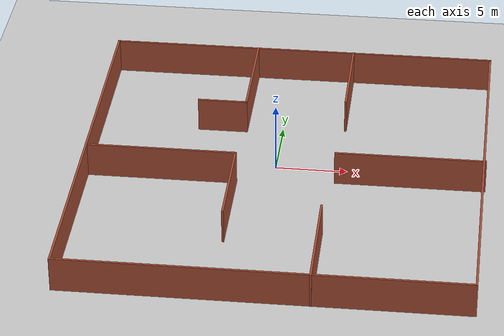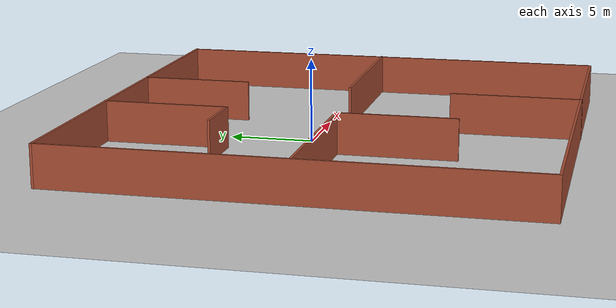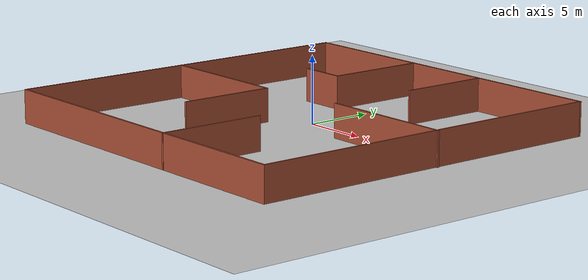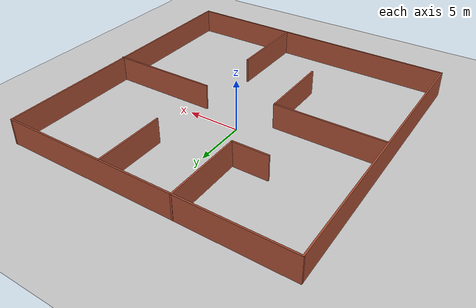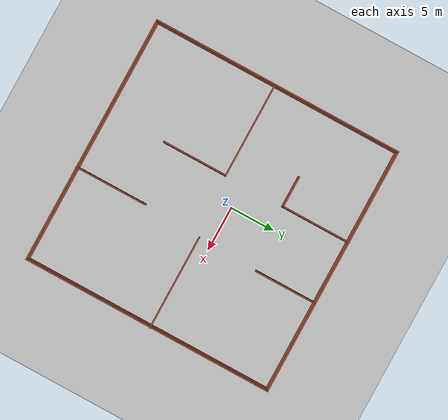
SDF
<sdf version="1.6">
 <world name="default">
  <light name="sun" type="directional">
   <pose>0 0 10 0 -0 0</pose>
   <diffuse>0.8 0.8 0.8 1</diffuse>
   <specular>0.1 0.1 0.1 1</specular>
   <attenuation>
    <range>1000</range>
    <constant>0.9</constant>
    <linear>0.01</linear>
    <quadratic>0.001</quadratic>
   </attenuation>
   <direction>-0.5 0.5 -1</direction>
  </light>
  <model name="ground_plane">
   <static>1</static>
   <link name="link">
    <collision name="collision">
     <geometry><plane><normal>0 0 1</normal><size>100 100</size></plane></geometry>
     <surface><friction><ode><mu>100</mu><mu2>50</mu2></ode></friction></surface>
    </collision>
    <visual name="visual">
     <cast_shadows>0</cast_shadows>
     <geometry><plane><normal>0 0 1</normal><size>100 100</size></plane></geometry>
     <material>
      <script><uri>file://media/materials/scripts/gazebo.material</uri><name>Gazebo/Grey</name></script>
     </material>
    </visual>
   </link>
  </model>
  <gravity>0 0 -9.8</gravity>
  <magnetic_field>6e-06 2.3e-05 -4.2e-05</magnetic_field>
  <atmosphere type="adiabatic"/>
  <physics name="default_physics" default="0" type="ode">
   <max_step_size>0.001</max_step_size>
   <real_time_factor>1</real_time_factor>
   <real_time_update_rate>1000</real_time_update_rate>
  </physics>
  <scene><ambient>0.4 0.4 0.4 1</ambient><background>0.7 0.7 0.7 1</background><shadows>1</shadows></scene>
  <spherical_coordinates>
   <surface_model>EARTH_WGS84</surface_model>
   <latitude_deg>0</latitude_deg>
   <longitude_deg>0</longitude_deg>
   <elevation>0</elevation>
   <heading_deg>0</heading_deg>
  </spherical_coordinates>
  <model name="room_rf_easy">
   <link name="Wall_0">
    <pose>-13.8516 0.036134 0 0 0 -1.5708</pose>
    <visual name="Wall_0_Visual">
     <pose>0 0 1.25 0 -0 0</pose>
     <geometry><box><size>28 0.15 2.5</size></box></geometry>
     <material>
      <script><uri>file://media/materials/scripts/gazebo.material</uri><name>Gazebo/Bricks</name></script>
      <ambient>1 1 1 1</ambient>
      <diffuse>1 1 1 1</diffuse>
      <specular>0.2 0.2 0.2 1</specular>
      <emissive>0 0 0 1</emissive>
     </material>
    </visual>
    <collision name="Wall_0_Collision">
     <pose>0 0 1.25 0 -0 0</pose>
     <geometry><box><size>28 0.15 2.5</size></box></geometry>
     <surface>
      <friction>
       <ode><mu>1</mu><mu2>1</mu2><fdir1>0 0 0</fdir1><slip1>0</slip1><slip2>0</slip2></ode>
       <torsional>
        <coefficient>1</coefficient>
        <patch_radius>0</patch_radius>
        <surface_radius>0</surface_radius>
        <use_patch_radius>1</use_patch_radius>
        <ode><slip>0</slip></ode>
       </torsional>
      </friction>
      <bounce><restitution_coefficient>0</restitution_coefficient><threshold>1e+06</threshold></bounce>
      <contact>
       <collide_without_contact>0</collide_without_contact>
       <collide_without_contact_bitmask>1</collide_without_contact_bitmask>
       <collide_bitmask>1</collide_bitmask>
       <ode>
        <soft_cfm>0</soft_cfm>
        <soft_erp>0.2</soft_erp>
        <kp>1e+13</kp>
        <kd>1</kd>
        <max_vel>0.01</max_vel>
        <min_depth>0</min_depth>
       </ode>
       <bullet>
        <split_impulse>1</split_impulse>
        <split_impulse_penetration_threshold>-0.01</split_impulse_penetration_threshold>
        <soft_cfm>0</soft_cfm>
        <soft_erp>0.2</soft_erp>
        <kp>1e+13</kp>
        <kd>1</kd>
       </bullet>
      </contact>
     </surface>
    </collision>
   </link>
   <link name="Wall_12">
    <pose>-8.57063 -0.247509 0 0 -0 0</pose>
    <visual name="Wall_12_Visual">
     <pose>0 0 1.25 0 -0 0</pose>
     <geometry><box><size>10.5 0.15 2.5</size></box></geometry>
     <material>
      <script><uri>file://media/materials/scripts/gazebo.material</uri><name>Gazebo/Bricks</name></script>
      <ambient>1 1 1 1</ambient>
      <diffuse>1 1 1 1</diffuse>
      <specular>0.2 0.2 0.2 1</specular>
      <emissive>0 0 0 1</emissive>
     </material>
    </visual>
    <collision name="Wall_12_Collision">
     <pose>0 0 1.25 0 -0 0</pose>
     <geometry><box><size>10.5 0.15 2.5</size></box></geometry>
     <surface>
      <friction>
       <ode><mu>1</mu><mu2>1</mu2><fdir1>0 0 0</fdir1><slip1>0</slip1><slip2>0</slip2></ode>
       <torsional>
        <coefficient>1</coefficient>
        <patch_radius>0</patch_radius>
        <surface_radius>0</surface_radius>
        <use_patch_radius>1</use_patch_radius>
        <ode><slip>0</slip></ode>
       </torsional>
      </friction>
      <bounce><restitution_coefficient>0</restitution_coefficient><threshold>1e+06</threshold></bounce>
      <contact>
       <collide_without_contact>0</collide_without_contact>
       <collide_without_contact_bitmask>1</collide_without_contact_bitmask>
       <collide_bitmask>1</collide_bitmask>
       <ode>
        <soft_cfm>0</soft_cfm>
        <soft_erp>0.2</soft_erp>
        <kp>1e+13</kp>
        <kd>1</kd>
        <max_vel>0.01</max_vel>
        <min_depth>0</min_depth>
       </ode>
       <bullet>
        <split_impulse>1</split_impulse>
        <split_impulse_penetration_threshold>-0.01</split_impulse_penetration_threshold>
        <soft_cfm>0</soft_cfm>
        <soft_erp>0.2</soft_erp>
        <kp>1e+13</kp>
        <kd>1</kd>
       </bullet>
      </contact>
     </surface>
    </collision>
   </link>
   <link name="Wall_13">
    <pose>-3.39563 -3.79751 0 0 0 -1.5708</pose>
    <visual name="Wall_13_Visual">
     <pose>0 0 1.25 0 -0 0</pose>
     <geometry><box><size>7.25 0.15 2.5</size></box></geometry>
     <material>
      <script><uri>file://media/materials/scripts/gazebo.material</uri><name>Gazebo/Bricks</name></script>
      <ambient>1 1 1 1</ambient>
      <diffuse>1 1 1 1</diffuse>
      <specular>0.2 0.2 0.2 1</specular>
      <emissive>0 0 0 1</emissive>
     </material>
    </visual>
    <collision name="Wall_13_Collision">
     <pose>0 0 1.25 0 -0 0</pose>
     <geometry><box><size>7.25 0.15 2.5</size></box></geometry>
     <surface>
      <friction>
       <ode><mu>1</mu><mu2>1</mu2><fdir1>0 0 0</fdir1><slip1>0</slip1><slip2>0</slip2></ode>
       <torsional>
        <coefficient>1</coefficient>
        <patch_radius>0</patch_radius>
        <surface_radius>0</surface_radius>
        <use_patch_radius>1</use_patch_radius>
        <ode><slip>0</slip></ode>
       </torsional>
      </friction>
      <bounce><restitution_coefficient>0</restitution_coefficient><threshold>1e+06</threshold></bounce>
      <contact>
       <collide_without_contact>0</collide_without_contact>
       <collide_without_contact_bitmask>1</collide_without_contact_bitmask>
       <collide_bitmask>1</collide_bitmask>
       <ode>
        <soft_cfm>0</soft_cfm>
        <soft_erp>0.2</soft_erp>
        <kp>1e+13</kp>
        <kd>1</kd>
        <max_vel>0.01</max_vel>
        <min_depth>0</min_depth>
       </ode>
       <bullet>
        <split_impulse>1</split_impulse>
        <split_impulse_penetration_threshold>-0.01</split_impulse_penetration_threshold>
        <soft_cfm>0</soft_cfm>
        <soft_erp>0.2</soft_erp>
        <kp>1e+13</kp>
        <kd>1</kd>
       </bullet>
      </contact>
     </surface>
    </collision>
   </link>
   <link name="Wall_17">
    <pose>3.11215 -9.96428 0 0 -0 1.5708</pose>
    <inertial>
     <inertia><ixx>nan</ixx><ixy>0</ixy><ixz>0</ixz><iyy>nan</iyy><iyz>0</iyz><izz>nan</izz></inertia>
     <mass>0</mass>
    </inertial>
    <visual name="Wall_17_Visual">
     <pose>0 0 1.25 0 -0 0</pose>
     <geometry><box><size>8.03273 0.15 2.5</size></box></geometry>
     <material>
      <script><uri>file://media/materials/scripts/gazebo.material</uri><name>Gazebo/Bricks</name></script>
      <ambient>1 1 1 1</ambient>
      <diffuse>1 1 1 1</diffuse>
      <specular>0.2 0.2 0.2 1</specular>
      <emissive>0 0 0 1</emissive>
     </material>
    </visual>
    <collision name="Wall_17_Collision">
     <pose>0 0 1.25 0 -0 0</pose>
     <geometry><box><size>8.03273 0.15 2.5</size></box></geometry>
     <surface>
      <friction>
       <ode><mu>1</mu><mu2>1</mu2><fdir1>0 0 0</fdir1><slip1>0</slip1><slip2>0</slip2></ode>
       <torsional>
        <coefficient>1</coefficient>
        <patch_radius>0</patch_radius>
        <surface_radius>0</surface_radius>
        <use_patch_radius>1</use_patch_radius>
        <ode><slip>0</slip></ode>
       </torsional>
      </friction>
      <bounce><restitution_coefficient>0</restitution_coefficient><threshold>1e+06</threshold></bounce>
      <contact>
       <collide_without_contact>0</collide_without_contact>
       <collide_without_contact_bitmask>1</collide_without_contact_bitmask>
       <collide_bitmask>1</collide_bitmask>
       <ode>
        <soft_cfm>0</soft_cfm>
        <soft_erp>0.2</soft_erp>
        <kp>1e+13</kp>
        <kd>1</kd>
        <max_vel>0.01</max_vel>
        <min_depth>0</min_depth>
       </ode>
       <bullet>
        <split_impulse>1</split_impulse>
        <split_impulse_penetration_threshold>-0.01</split_impulse_penetration_threshold>
        <soft_cfm>0</soft_cfm>
        <soft_erp>0.2</soft_erp>
        <kp>1e+13</kp>
        <kd>1</kd>
       </bullet>
      </contact>
     </surface>
    </collision>
   </link>
   <link name="Wall_2">
    <pose>-0.051626 -13.8889 0 0 -0 0</pose>
    <visual name="Wall_2_Visual">
     <pose>0 0 1.25 0 -0 0</pose>
     <geometry><box><size>27.75 0.15 2.5</size></box></geometry>
     <material>
      <script><uri>file://media/materials/scripts/gazebo.material</uri><name>Gazebo/Bricks</name></script>
      <ambient>1 1 1 1</ambient>
      <diffuse>1 1 1 1</diffuse>
      <specular>0.2 0.2 0.2 1</specular>
      <emissive>0 0 0 1</emissive>
     </material>
    </visual>
    <collision name="Wall_2_Collision">
     <pose>0 0 1.25 0 -0 0</pose>
     <geometry><box><size>27.75 0.15 2.5</size></box></geometry>
     <surface>
      <friction>
       <ode><mu>1</mu><mu2>1</mu2><fdir1>0 0 0</fdir1><slip1>0</slip1><slip2>0</slip2></ode>
       <torsional>
        <coefficient>1</coefficient>
        <patch_radius>0</patch_radius>
        <surface_radius>0</surface_radius>
        <use_patch_radius>1</use_patch_radius>
        <ode><slip>0</slip></ode>
       </torsional>
      </friction>
      <bounce><restitution_coefficient>0</restitution_coefficient><threshold>1e+06</threshold></bounce>
      <contact>
       <collide_without_contact>0</collide_without_contact>
       <collide_without_contact_bitmask>1</collide_without_contact_bitmask>
       <collide_bitmask>1</collide_bitmask>
       <ode>
        <soft_cfm>0</soft_cfm>
        <soft_erp>0.2</soft_erp>
        <kp>1e+13</kp>
        <kd>1</kd>
        <max_vel>0.01</max_vel>
        <min_depth>0</min_depth>
       </ode>
       <bullet>
        <split_impulse>1</split_impulse>
        <split_impulse_penetration_threshold>-0.01</split_impulse_penetration_threshold>
        <soft_cfm>0</soft_cfm>
        <soft_erp>0.2</soft_erp>
        <kp>1e+13</kp>
        <kd>1</kd>
       </bullet>
      </contact>
     </surface>
    </collision>
   </link>
   <link name="Wall_21">
    <pose>8.67663 0.433141 0 0 -0 3.14159</pose>
    <visual name="Wall_21_Visual">
     <pose>0 0 1.25 0 -0 0</pose>
     <geometry><box><size>10.5 0.15 2.5</size></box></geometry>
     <material>
      <script><uri>file://media/materials/scripts/gazebo.material</uri><name>Gazebo/Bricks</name></script>
      <ambient>1 1 1 1</ambient>
      <diffuse>1 1 1 1</diffuse>
      <specular>0.2 0.2 0.2 1</specular>
      <emissive>0 0 0 1</emissive>
     </material>
    </visual>
    <collision name="Wall_21_Collision">
     <pose>0 0 1.25 0 -0 0</pose>
     <geometry><box><size>10.5 0.15 2.5</size></box></geometry>
     <surface>
      <friction>
       <ode><mu>1</mu><mu2>1</mu2><fdir1>0 0 0</fdir1><slip1>0</slip1><slip2>0</slip2></ode>
       <torsional>
        <coefficient>1</coefficient>
        <patch_radius>0</patch_radius>
        <surface_radius>0</surface_radius>
        <use_patch_radius>1</use_patch_radius>
        <ode><slip>0</slip></ode>
       </torsional>
      </friction>
      <bounce><restitution_coefficient>0</restitution_coefficient><threshold>1e+06</threshold></bounce>
      <contact>
       <collide_without_contact>0</collide_without_contact>
       <collide_without_contact_bitmask>1</collide_without_contact_bitmask>
       <collide_bitmask>1</collide_bitmask>
       <ode>
        <soft_cfm>0</soft_cfm>
        <soft_erp>0.2</soft_erp>
        <kp>1e+13</kp>
        <kd>1</kd>
        <max_vel>0.01</max_vel>
        <min_depth>0</min_depth>
       </ode>
       <bullet>
        <split_impulse>1</split_impulse>
        <split_impulse_penetration_threshold>-0.01</split_impulse_penetration_threshold>
        <soft_cfm>0</soft_cfm>
        <soft_erp>0.2</soft_erp>
        <kp>1e+13</kp>
        <kd>1</kd>
       </bullet>
      </contact>
     </surface>
    </collision>
   </link>
   <link name="Wall_22">
    <pose>3.6543 10.5477 0 0 -0 1.5708</pose>
    <inertial>
     <inertia><ixx>nan</ixx><ixy>0</ixy><ixz>0</ixz><iyy>nan</iyy><iyz>0</iyz><izz>nan</izz></inertia>
     <mass>0</mass>
    </inertial>
    <visual name="Wall_22_Visual">
     <pose>0 0 1.25 0 -0 0</pose>
     <geometry><box><size>6.8531 0.15 2.5</size></box></geometry>
     <material>
      <script><uri>file://media/materials/scripts/gazebo.material</uri><name>Gazebo/Bricks</name></script>
      <ambient>1 1 1 1</ambient>
      <diffuse>1 1 1 1</diffuse>
      <specular>0.2 0.2 0.2 1</specular>
      <emissive>0 0 0 1</emissive>
     </material>
    </visual>
    <collision name="Wall_22_Collision">
     <pose>0 0 1.25 0 -0 0</pose>
     <geometry><box><size>6.8531 0.15 2.5</size></box></geometry>
     <surface>
      <friction>
       <ode><mu>1</mu><mu2>1</mu2><fdir1>0 0 0</fdir1><slip1>0</slip1><slip2>0</slip2></ode>
       <torsional>
        <coefficient>1</coefficient>
        <patch_radius>0</patch_radius>
        <surface_radius>0</surface_radius>
        <use_patch_radius>1</use_patch_radius>
        <ode><slip>0</slip></ode>
       </torsional>
      </friction>
      <bounce><restitution_coefficient>0</restitution_coefficient><threshold>1e+06</threshold></bounce>
      <contact>
       <collide_without_contact>0</collide_without_contact>
       <collide_without_contact_bitmask>1</collide_without_contact_bitmask>
       <collide_bitmask>1</collide_bitmask>
       <ode>
        <soft_cfm>0</soft_cfm>
        <soft_erp>0.2</soft_erp>
        <kp>1e+13</kp>
        <kd>1</kd>
        <max_vel>0.01</max_vel>
        <min_depth>0</min_depth>
       </ode>
       <bullet>
        <split_impulse>1</split_impulse>
        <split_impulse_penetration_threshold>-0.01</split_impulse_penetration_threshold>
        <soft_cfm>0</soft_cfm>
        <soft_erp>0.2</soft_erp>
        <kp>1e+13</kp>
        <kd>1</kd>
       </bullet>
      </contact>
     </surface>
    </collision>
   </link>
   <link name="Wall_3">
    <pose>13.7484 0.036134 0 0 -0 1.5708</pose>
    <visual name="Wall_3_Visual">
     <pose>0 0 1.25 0 -0 0</pose>
     <geometry><box><size>28 0.15 2.5</size></box></geometry>
     <material>
      <script><uri>file://media/materials/scripts/gazebo.material</uri><name>Gazebo/Bricks</name></script>
      <ambient>1 1 1 1</ambient>
      <diffuse>1 1 1 1</diffuse>
      <specular>0.2 0.2 0.2 1</specular>
      <emissive>0 0 0 1</emissive>
     </material>
    </visual>
    <collision name="Wall_3_Collision">
     <pose>0 0 1.25 0 -0 0</pose>
     <geometry><box><size>28 0.15 2.5</size></box></geometry>
     <surface>
      <friction>
       <ode><mu>1</mu><mu2>1</mu2><fdir1>0 0 0</fdir1><slip1>0</slip1><slip2>0</slip2></ode>
       <torsional>
        <coefficient>1</coefficient>
        <patch_radius>0</patch_radius>
        <surface_radius>0</surface_radius>
        <use_patch_radius>1</use_patch_radius>
        <ode><slip>0</slip></ode>
       </torsional>
      </friction>
      <bounce><restitution_coefficient>0</restitution_coefficient><threshold>1e+06</threshold></bounce>
      <contact>
       <collide_without_contact>0</collide_without_contact>
       <collide_without_contact_bitmask>1</collide_without_contact_bitmask>
       <collide_bitmask>1</collide_bitmask>
       <ode>
        <soft_cfm>0</soft_cfm>
        <soft_erp>0.2</soft_erp>
        <kp>1e+13</kp>
        <kd>1</kd>
        <max_vel>0.01</max_vel>
        <min_depth>0</min_depth>
       </ode>
       <bullet>
        <split_impulse>1</split_impulse>
        <split_impulse_penetration_threshold>-0.01</split_impulse_penetration_threshold>
        <soft_cfm>0</soft_cfm>
        <soft_erp>0.2</soft_erp>
        <kp>1e+13</kp>
        <kd>1</kd>
       </bullet>
      </contact>
     </surface>
    </collision>
   </link>
   <link name="Wall_4">
    <pose>-0.051626 13.9611 0 0 -0 3.14159</pose>
    <visual name="Wall_4_Visual">
     <pose>0 0 1.25 0 -0 0</pose>
     <geometry><box><size>27.75 0.15 2.5</size></box></geometry>
     <material>
      <script><uri>file://media/materials/scripts/gazebo.material</uri><name>Gazebo/Bricks</name></script>
      <ambient>1 1 1 1</ambient>
      <diffuse>1 1 1 1</diffuse>
      <specular>0.2 0.2 0.2 1</specular>
      <emissive>0 0 0 1</emissive>
     </material>
    </visual>
    <collision name="Wall_4_Collision">
     <pose>0 0 1.25 0 -0 0</pose>
     <geometry><box><size>27.75 0.15 2.5</size></box></geometry>
     <surface>
      <friction>
       <ode><mu>1</mu><mu2>1</mu2><fdir1>0 0 0</fdir1><slip1>0</slip1><slip2>0</slip2></ode>
       <torsional>
        <coefficient>1</coefficient>
        <patch_radius>0</patch_radius>
        <surface_radius>0</surface_radius>
        <use_patch_radius>1</use_patch_radius>
        <ode><slip>0</slip></ode>
       </torsional>
      </friction>
      <bounce><restitution_coefficient>0</restitution_coefficient><threshold>1e+06</threshold></bounce>
      <contact>
       <collide_without_contact>0</collide_without_contact>
       <collide_without_contact_bitmask>1</collide_without_contact_bitmask>
       <collide_bitmask>1</collide_bitmask>
       <ode>
        <soft_cfm>0</soft_cfm>
        <soft_erp>0.2</soft_erp>
        <kp>1e+13</kp>
        <kd>1</kd>
        <max_vel>0.01</max_vel>
        <min_depth>0</min_depth>
       </ode>
       <bullet>
        <split_impulse>1</split_impulse>
        <split_impulse_penetration_threshold>-0.01</split_impulse_penetration_threshold>
        <soft_cfm>0</soft_cfm>
        <soft_erp>0.2</soft_erp>
        <kp>1e+13</kp>
        <kd>1</kd>
       </bullet>
      </contact>
     </surface>
    </collision>
   </link>
   <link name="Wall_6">
    <pose>-3.41213 10.1843 0 0 0 -1.5708</pose>
    <visual name="Wall_6_Visual">
     <pose>0 0 1.25 0 -0 0</pose>
     <geometry><box><size>7.75 0.15 2.5</size></box></geometry>
     <material>
      <script><uri>file://media/materials/scripts/gazebo.material</uri><name>Gazebo/Bricks</name></script>
      <ambient>1 1 1 1</ambient>
      <diffuse>1 1 1 1</diffuse>
      <specular>0.2 0.2 0.2 1</specular>
      <emissive>0 0 0 1</emissive>
     </material>
    </visual>
    <collision name="Wall_6_Collision">
     <pose>0 0 1.25 0 -0 0</pose>
     <geometry><box><size>7.75 0.15 2.5</size></box></geometry>
     <surface>
      <friction>
       <ode><mu>1</mu><mu2>1</mu2><fdir1>0 0 0</fdir1><slip1>0</slip1><slip2>0</slip2></ode>
       <torsional>
        <coefficient>1</coefficient>
        <patch_radius>0</patch_radius>
        <surface_radius>0</surface_radius>
        <use_patch_radius>1</use_patch_radius>
        <ode><slip>0</slip></ode>
       </torsional>
      </friction>
      <bounce><restitution_coefficient>0</restitution_coefficient><threshold>1e+06</threshold></bounce>
      <contact>
       <collide_without_contact>0</collide_without_contact>
       <collide_without_contact_bitmask>1</collide_without_contact_bitmask>
       <collide_bitmask>1</collide_bitmask>
       <ode>
        <soft_cfm>0</soft_cfm>
        <soft_erp>0.2</soft_erp>
        <kp>1e+13</kp>
        <kd>1</kd>
        <max_vel>0.01</max_vel>
        <min_depth>0</min_depth>
       </ode>
       <bullet>
        <split_impulse>1</split_impulse>
        <split_impulse_penetration_threshold>-0.01</split_impulse_penetration_threshold>
        <soft_cfm>0</soft_cfm>
        <soft_erp>0.2</soft_erp>
        <kp>1e+13</kp>
        <kd>1</kd>
       </bullet>
      </contact>
     </surface>
    </collision>
   </link>
   <link name="Wall_7">
    <pose>-5.10757 6.38426 0 0 -0 3.14159</pose>
    <inertial>
     <inertia><ixx>nan</ixx><ixy>0</ixy><ixz>0</ixz><iyy>nan</iyy><iyz>0</iyz><izz>nan</izz></inertia>
     <mass>0</mass>
    </inertial>
    <visual name="Wall_7_Visual">
     <pose>0 0 1.25 0 -0 0</pose>
     <geometry><box><size>3.5408 0.15 2.5</size></box></geometry>
     <material>
      <script><uri>file://media/materials/scripts/gazebo.material</uri><name>Gazebo/Bricks</name></script>
      <ambient>1 1 1 1</ambient>
      <diffuse>1 1 1 1</diffuse>
      <specular>0.2 0.2 0.2 1</specular>
      <emissive>0 0 0 1</emissive>
     </material>
    </visual>
    <collision name="Wall_7_Collision">
     <pose>0 0 1.25 0 -0 0</pose>
     <geometry><box><size>3.5408 0.15 2.5</size></box></geometry>
     <surface>
      <friction>
       <ode><mu>1</mu><mu2>1</mu2><fdir1>0 0 0</fdir1><slip1>0</slip1><slip2>0</slip2></ode>
       <torsional>
        <coefficient>1</coefficient>
        <patch_radius>0</patch_radius>
        <surface_radius>0</surface_radius>
        <use_patch_radius>1</use_patch_radius>
        <ode><slip>0</slip></ode>
       </torsional>
      </friction>
      <bounce><restitution_coefficient>0</restitution_coefficient><threshold>1e+06</threshold></bounce>
      <contact>
       <collide_without_contact>0</collide_without_contact>
       <collide_without_contact_bitmask>1</collide_without_contact_bitmask>
       <collide_bitmask>1</collide_bitmask>
       <ode>
        <soft_cfm>0</soft_cfm>
        <soft_erp>0.2</soft_erp>
        <kp>1e+13</kp>
        <kd>1</kd>
        <max_vel>0.01</max_vel>
        <min_depth>0</min_depth>
       </ode>
       <bullet>
        <split_impulse>1</split_impulse>
        <split_impulse_penetration_threshold>-0.01</split_impulse_penetration_threshold>
        <soft_cfm>0</soft_cfm>
        <soft_erp>0.2</soft_erp>
        <kp>1e+13</kp>
        <kd>1</kd>
       </bullet>
      </contact>
     </surface>
    </collision>
   </link>
   <static>1</static>
   <pose>0.796831 -1.8694 0 0 -0 0</pose>
  </model>
 </world>
</sdf>
